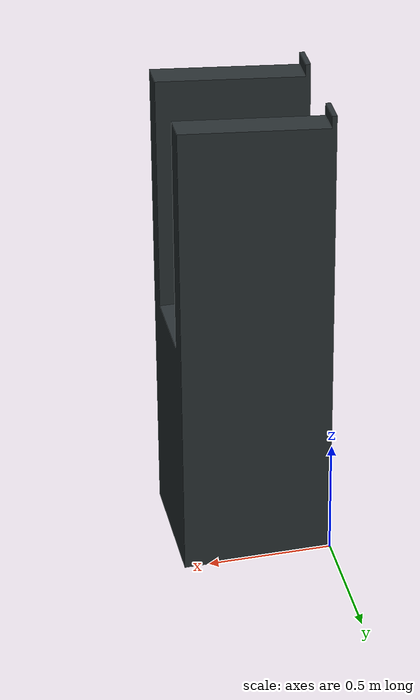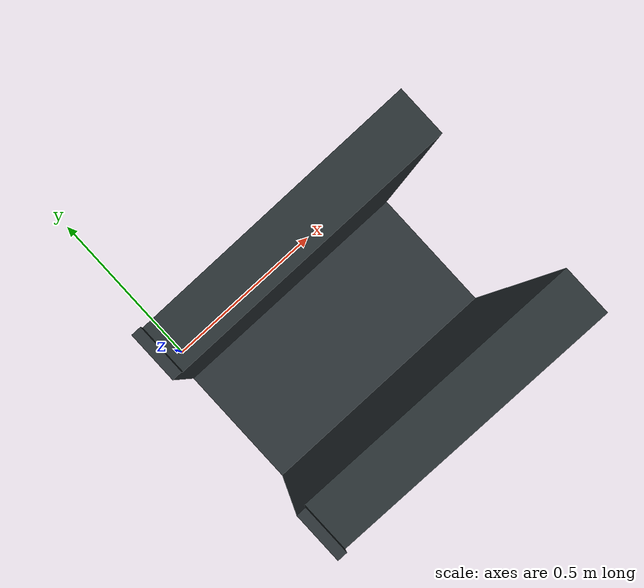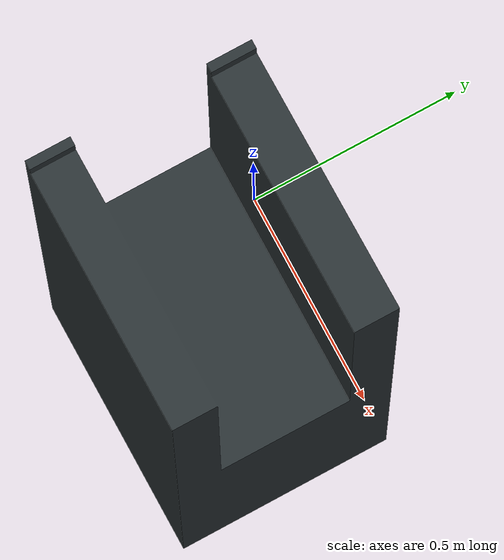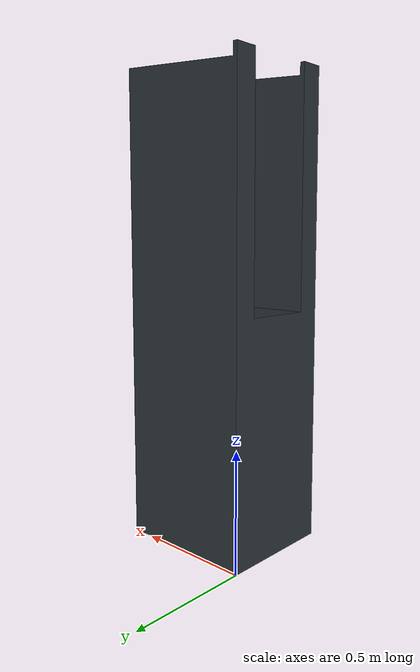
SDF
<?xml version="1.0" encoding="UTF-8"?>
<sdf version='1.9'>
  <model name='katapult'>
    <pose>0 0 0 0 0 0</pose>
    <static>true</static>
    <link name='base_link'>
      <pose>0 0 0 0 0 0</pose>
      <inertial>
        <pose>0 0 0 0 0 0</pose>
        <mass>50.0</mass>
        <inertia>
          <ixx>1000.0</ixx>
          <iyy>1000.0</iyy>
          <izz>1000.0</izz>
          <ixy>0.0</ixy>
          <ixz>0.0</ixz>
          <iyz>0.0</iyz>
        </inertia>
      </inertial>
      <collision name='base_link_collision'>
        <pose>0 0 0 0 0 0</pose>
        <geometry>
          <mesh>
            <uri>model://katapult/meshes/katapult.stl</uri>
          </mesh>
        </geometry>
        <surface>
          <contact>
            <ode>
              <max_vel>10</max_vel>
              <min_depth>0.01</min_depth>
            </ode>
          </contact>
          <friction>
            <ode>
              <mu>0.01</mu>
              <mu2>0.01</mu2>
            </ode>
          </friction>
        </surface>
      </collision>
      <visual name='base_link_visual'>
        <pose>0 0 0 0 0 0</pose>
        <geometry>
          <mesh>
            <uri>model://katapult/meshes/katapult.stl</uri>
          </mesh>
        </geometry>
        <material>
          <ambient>0.16 0.19 0.20 1.0</ambient>
          <diffuse>0.16 0.19 0.20 1.0</diffuse>
        </material>
      </visual>
      <gravity>1</gravity>
      <velocity_decay />
      <self_collide>0</self_collide>
    </link>
</model>
</sdf>
